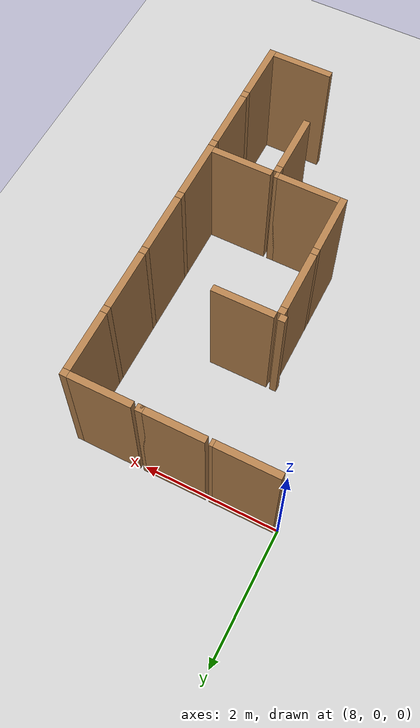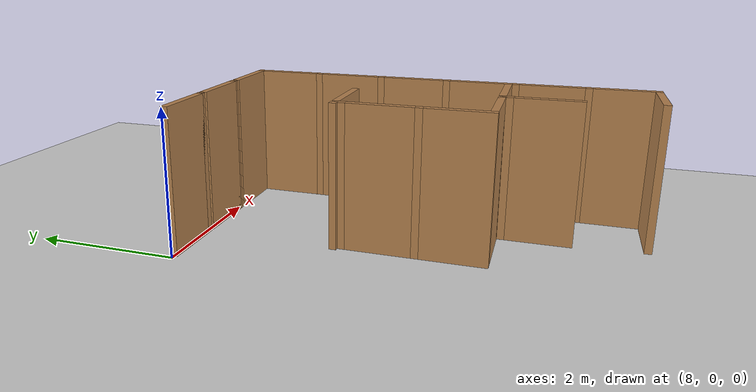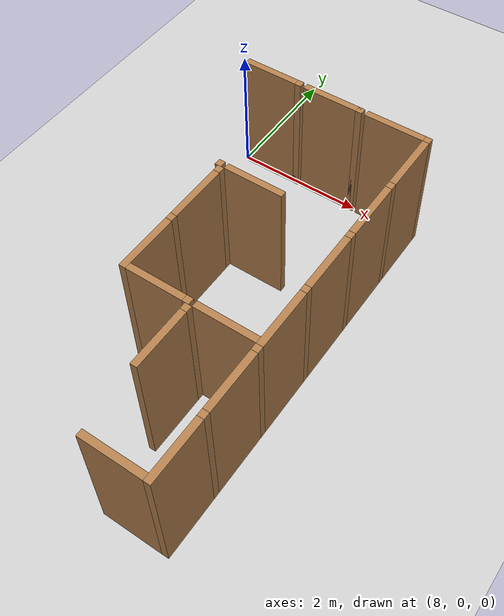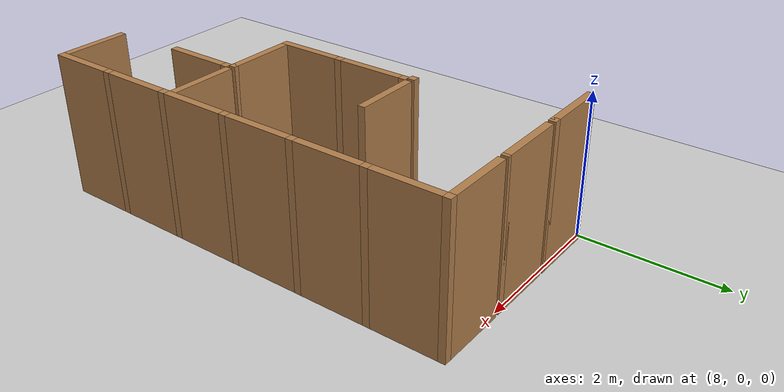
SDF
<sdf version="1.6">
 <world name="default">
  <include><uri>model://sun</uri></include>
  <model name="ground_plane">
   <static>true</static>
   <link name="link">
    <collision name="collision"><geometry><plane><size>12.0 12.0</size></plane></geometry></collision>
    <visual name="visual">
     <cast_shadows>false</cast_shadows>
     <geometry><plane><size>12.0 12.0</size></plane></geometry>
     <material>
      <script><uri>file://media/materials/scripts/gazebo.material</uri><name>Gazebo/Grey</name></script>
     </material>
    </visual>
   </link>
   <pose>6.0 -6.0 0 0 0 0</pose>
  </model>
  <model name="vwall_0_11">
   <pose>11.0 -0.5 1.0 0 0 0</pose>
   <link name="link">
    <collision name="collision"><geometry><box><size>0.1 0.9 2</size></box></geometry></collision>
    <visual name="visual">
     <geometry><box><size>0.1 0.9 2</size></box></geometry>
     <material>
      <script><uri>file://media/materials/scripts/gazebo.material</uri><name>Gazebo/Wood</name></script>
     </material>
    </visual>
   </link>
  </model>
  <model name="joint_11.0_0.0">
   <pose>11.0 0.0 1.0 0 0 0</pose>
   <link name="link">
    <collision name="collision"><geometry><box><size>0.1 0.1 2</size></box></geometry></collision>
    <visual name="visual">
     <geometry><box><size>0.1 0.1 2</size></box></geometry>
     <material>
      <script><uri>file://media/materials/scripts/gazebo.material</uri><name>Gazebo/Wood</name></script>
     </material>
    </visual>
   </link>
  </model>
  <model name="vwall_1_11">
   <pose>11.0 -1.5 1.0 0 0 0</pose>
   <link name="link">
    <collision name="collision"><geometry><box><size>0.1 0.9 2</size></box></geometry></collision>
    <visual name="visual">
     <geometry><box><size>0.1 0.9 2</size></box></geometry>
     <material>
      <script><uri>file://media/materials/scripts/gazebo.material</uri><name>Gazebo/Wood</name></script>
     </material>
    </visual>
   </link>
  </model>
  <model name="joint_11.0_-1.0">
   <pose>11.0 -1.0 1.0 0 0 0</pose>
   <link name="link">
    <collision name="collision"><geometry><box><size>0.1 0.1 2</size></box></geometry></collision>
    <visual name="visual">
     <geometry><box><size>0.1 0.1 2</size></box></geometry>
     <material>
      <script><uri>file://media/materials/scripts/gazebo.material</uri><name>Gazebo/Wood</name></script>
     </material>
    </visual>
   </link>
  </model>
  <model name="vwall_2_9">
   <pose>9.0 -2.5 1.0 0 0 0</pose>
   <link name="link">
    <collision name="collision"><geometry><box><size>0.1 0.9 2</size></box></geometry></collision>
    <visual name="visual">
     <geometry><box><size>0.1 0.9 2</size></box></geometry>
     <material>
      <script><uri>file://media/materials/scripts/gazebo.material</uri><name>Gazebo/Wood</name></script>
     </material>
    </visual>
   </link>
  </model>
  <model name="joint_9.0_-2.0">
   <pose>9.0 -2.0 1.0 0 0 0</pose>
   <link name="link">
    <collision name="collision"><geometry><box><size>0.1 0.1 2</size></box></geometry></collision>
    <visual name="visual">
     <geometry><box><size>0.1 0.1 2</size></box></geometry>
     <material>
      <script><uri>file://media/materials/scripts/gazebo.material</uri><name>Gazebo/Wood</name></script>
     </material>
    </visual>
   </link>
  </model>
  <model name="vwall_2_11">
   <pose>11.0 -2.5 1.0 0 0 0</pose>
   <link name="link">
    <collision name="collision"><geometry><box><size>0.1 0.9 2</size></box></geometry></collision>
    <visual name="visual">
     <geometry><box><size>0.1 0.9 2</size></box></geometry>
     <material>
      <script><uri>file://media/materials/scripts/gazebo.material</uri><name>Gazebo/Wood</name></script>
     </material>
    </visual>
   </link>
  </model>
  <model name="joint_11.0_-2.0">
   <pose>11.0 -2.0 1.0 0 0 0</pose>
   <link name="link">
    <collision name="collision"><geometry><box><size>0.1 0.1 2</size></box></geometry></collision>
    <visual name="visual">
     <geometry><box><size>0.1 0.1 2</size></box></geometry>
     <material>
      <script><uri>file://media/materials/scripts/gazebo.material</uri><name>Gazebo/Wood</name></script>
     </material>
    </visual>
   </link>
  </model>
  <model name="vwall_3_9">
   <pose>9.0 -3.5 1.0 0 0 0</pose>
   <link name="link">
    <collision name="collision"><geometry><box><size>0.1 0.9 2</size></box></geometry></collision>
    <visual name="visual">
     <geometry><box><size>0.1 0.9 2</size></box></geometry>
     <material>
      <script><uri>file://media/materials/scripts/gazebo.material</uri><name>Gazebo/Wood</name></script>
     </material>
    </visual>
   </link>
  </model>
  <model name="joint_9.0_-3.0">
   <pose>9.0 -3.0 1.0 0 0 0</pose>
   <link name="link">
    <collision name="collision"><geometry><box><size>0.1 0.1 2</size></box></geometry></collision>
    <visual name="visual">
     <geometry><box><size>0.1 0.1 2</size></box></geometry>
     <material>
      <script><uri>file://media/materials/scripts/gazebo.material</uri><name>Gazebo/Wood</name></script>
     </material>
    </visual>
   </link>
  </model>
  <model name="vwall_3_11">
   <pose>11.0 -3.5 1.0 0 0 0</pose>
   <link name="link">
    <collision name="collision"><geometry><box><size>0.1 0.9 2</size></box></geometry></collision>
    <visual name="visual">
     <geometry><box><size>0.1 0.9 2</size></box></geometry>
     <material>
      <script><uri>file://media/materials/scripts/gazebo.material</uri><name>Gazebo/Wood</name></script>
     </material>
    </visual>
   </link>
  </model>
  <model name="joint_11.0_-3.0">
   <pose>11.0 -3.0 1.0 0 0 0</pose>
   <link name="link">
    <collision name="collision"><geometry><box><size>0.1 0.1 2</size></box></geometry></collision>
    <visual name="visual">
     <geometry><box><size>0.1 0.1 2</size></box></geometry>
     <material>
      <script><uri>file://media/materials/scripts/gazebo.material</uri><name>Gazebo/Wood</name></script>
     </material>
    </visual>
   </link>
  </model>
  <model name="vwall_4_10">
   <pose>10.0 -4.5 1.0 0 0 0</pose>
   <link name="link">
    <collision name="collision"><geometry><box><size>0.1 0.9 2</size></box></geometry></collision>
    <visual name="visual">
     <geometry><box><size>0.1 0.9 2</size></box></geometry>
     <material>
      <script><uri>file://media/materials/scripts/gazebo.material</uri><name>Gazebo/Wood</name></script>
     </material>
    </visual>
   </link>
  </model>
  <model name="joint_10.0_-4.0">
   <pose>10.0 -4.0 1.0 0 0 0</pose>
   <link name="link">
    <collision name="collision"><geometry><box><size>0.1 0.1 2</size></box></geometry></collision>
    <visual name="visual">
     <geometry><box><size>0.1 0.1 2</size></box></geometry>
     <material>
      <script><uri>file://media/materials/scripts/gazebo.material</uri><name>Gazebo/Wood</name></script>
     </material>
    </visual>
   </link>
  </model>
  <model name="vwall_4_11">
   <pose>11.0 -4.5 1.0 0 0 0</pose>
   <link name="link">
    <collision name="collision"><geometry><box><size>0.1 0.9 2</size></box></geometry></collision>
    <visual name="visual">
     <geometry><box><size>0.1 0.9 2</size></box></geometry>
     <material>
      <script><uri>file://media/materials/scripts/gazebo.material</uri><name>Gazebo/Wood</name></script>
     </material>
    </visual>
   </link>
  </model>
  <model name="joint_11.0_-4.0">
   <pose>11.0 -4.0 1.0 0 0 0</pose>
   <link name="link">
    <collision name="collision"><geometry><box><size>0.1 0.1 2</size></box></geometry></collision>
    <visual name="visual">
     <geometry><box><size>0.1 0.1 2</size></box></geometry>
     <material>
      <script><uri>file://media/materials/scripts/gazebo.material</uri><name>Gazebo/Wood</name></script>
     </material>
    </visual>
   </link>
  </model>
  <model name="vwall_5_11">
   <pose>11.0 -5.5 1.0 0 0 0</pose>
   <link name="link">
    <collision name="collision"><geometry><box><size>0.1 0.9 2</size></box></geometry></collision>
    <visual name="visual">
     <geometry><box><size>0.1 0.9 2</size></box></geometry>
     <material>
      <script><uri>file://media/materials/scripts/gazebo.material</uri><name>Gazebo/Wood</name></script>
     </material>
    </visual>
   </link>
  </model>
  <model name="joint_11.0_-5.0">
   <pose>11.0 -5.0 1.0 0 0 0</pose>
   <link name="link">
    <collision name="collision"><geometry><box><size>0.1 0.1 2</size></box></geometry></collision>
    <visual name="visual">
     <geometry><box><size>0.1 0.1 2</size></box></geometry>
     <material>
      <script><uri>file://media/materials/scripts/gazebo.material</uri><name>Gazebo/Wood</name></script>
     </material>
    </visual>
   </link>
  </model>
  <model name="hwall_0_8">
   <pose>8.5 0.0 1.0 0 0 0</pose>
   <link name="link">
    <collision name="collision"><geometry><box><size>0.9 0.1 2</size></box></geometry></collision>
    <visual name="visual">
     <geometry><box><size>0.9 0.1 2</size></box></geometry>
     <material>
      <script><uri>file://media/materials/scripts/gazebo.material</uri><name>Gazebo/Wood</name></script>
     </material>
    </visual>
   </link>
  </model>
  <model name="joint_8.95_0.0">
   <pose>8.95 0.0 1.0 0 0 0</pose>
   <link name="link">
    <collision name="collision"><geometry><box><size>0.1 0.1 2</size></box></geometry></collision>
    <visual name="visual">
     <geometry><box><size>0.1 0.1 2</size></box></geometry>
     <material>
      <script><uri>file://media/materials/scripts/gazebo.material</uri><name>Gazebo/Wood</name></script>
     </material>
    </visual>
   </link>
  </model>
  <model name="hwall_0_9">
   <pose>9.5 0.0 1.0 0 0 0</pose>
   <link name="link">
    <collision name="collision"><geometry><box><size>0.9 0.1 2</size></box></geometry></collision>
    <visual name="visual">
     <geometry><box><size>0.9 0.1 2</size></box></geometry>
     <material>
      <script><uri>file://media/materials/scripts/gazebo.material</uri><name>Gazebo/Wood</name></script>
     </material>
    </visual>
   </link>
  </model>
  <model name="joint_9.95_0.0">
   <pose>9.95 0.0 1.0 0 0 0</pose>
   <link name="link">
    <collision name="collision"><geometry><box><size>0.1 0.1 2</size></box></geometry></collision>
    <visual name="visual">
     <geometry><box><size>0.1 0.1 2</size></box></geometry>
     <material>
      <script><uri>file://media/materials/scripts/gazebo.material</uri><name>Gazebo/Wood</name></script>
     </material>
    </visual>
   </link>
  </model>
  <model name="hwall_0_10">
   <pose>10.5 0.0 1.0 0 0 0</pose>
   <link name="link">
    <collision name="collision"><geometry><box><size>0.9 0.1 2</size></box></geometry></collision>
    <visual name="visual">
     <geometry><box><size>0.9 0.1 2</size></box></geometry>
     <material>
      <script><uri>file://media/materials/scripts/gazebo.material</uri><name>Gazebo/Wood</name></script>
     </material>
    </visual>
   </link>
  </model>
  <model name="joint_8.95_-1.9">
   <pose>8.95 -1.9 1.0 0 0 0</pose>
   <link name="link">
    <collision name="collision"><geometry><box><size>0.1 0.1 2</size></box></geometry></collision>
    <visual name="visual">
     <geometry><box><size>0.1 0.1 2</size></box></geometry>
     <material>
      <script><uri>file://media/materials/scripts/gazebo.material</uri><name>Gazebo/Wood</name></script>
     </material>
    </visual>
   </link>
  </model>
  <model name="hwall_1_9">
   <pose>9.5 -1.9 1.0 0 0 0</pose>
   <link name="link">
    <collision name="collision"><geometry><box><size>0.9 0.1 2</size></box></geometry></collision>
    <visual name="visual">
     <geometry><box><size>0.9 0.1 2</size></box></geometry>
     <material>
      <script><uri>file://media/materials/scripts/gazebo.material</uri><name>Gazebo/Wood</name></script>
     </material>
    </visual>
   </link>
  </model>
  <model name="hwall_3_9">
   <pose>9.5 -3.9 1.0 0 0 0</pose>
   <link name="link">
    <collision name="collision"><geometry><box><size>0.9 0.1 2</size></box></geometry></collision>
    <visual name="visual">
     <geometry><box><size>0.9 0.1 2</size></box></geometry>
     <material>
      <script><uri>file://media/materials/scripts/gazebo.material</uri><name>Gazebo/Wood</name></script>
     </material>
    </visual>
   </link>
  </model>
  <model name="joint_9.95_-3.9">
   <pose>9.95 -3.9 1.0 0 0 0</pose>
   <link name="link">
    <collision name="collision"><geometry><box><size>0.1 0.1 2</size></box></geometry></collision>
    <visual name="visual">
     <geometry><box><size>0.1 0.1 2</size></box></geometry>
     <material>
      <script><uri>file://media/materials/scripts/gazebo.material</uri><name>Gazebo/Wood</name></script>
     </material>
    </visual>
   </link>
  </model>
  <model name="hwall_3_10">
   <pose>10.5 -3.9 1.0 0 0 0</pose>
   <link name="link">
    <collision name="collision"><geometry><box><size>0.9 0.1 2</size></box></geometry></collision>
    <visual name="visual">
     <geometry><box><size>0.9 0.1 2</size></box></geometry>
     <material>
      <script><uri>file://media/materials/scripts/gazebo.material</uri><name>Gazebo/Wood</name></script>
     </material>
    </visual>
   </link>
  </model>
  <model name="hwall_5_10">
   <pose>10.5 -5.9 1.0 0 0 0</pose>
   <link name="link">
    <collision name="collision"><geometry><box><size>0.9 0.1 2</size></box></geometry></collision>
    <visual name="visual">
     <geometry><box><size>0.9 0.1 2</size></box></geometry>
     <material>
      <script><uri>file://media/materials/scripts/gazebo.material</uri><name>Gazebo/Wood</name></script>
     </material>
    </visual>
   </link>
  </model>
 </world>
</sdf>
